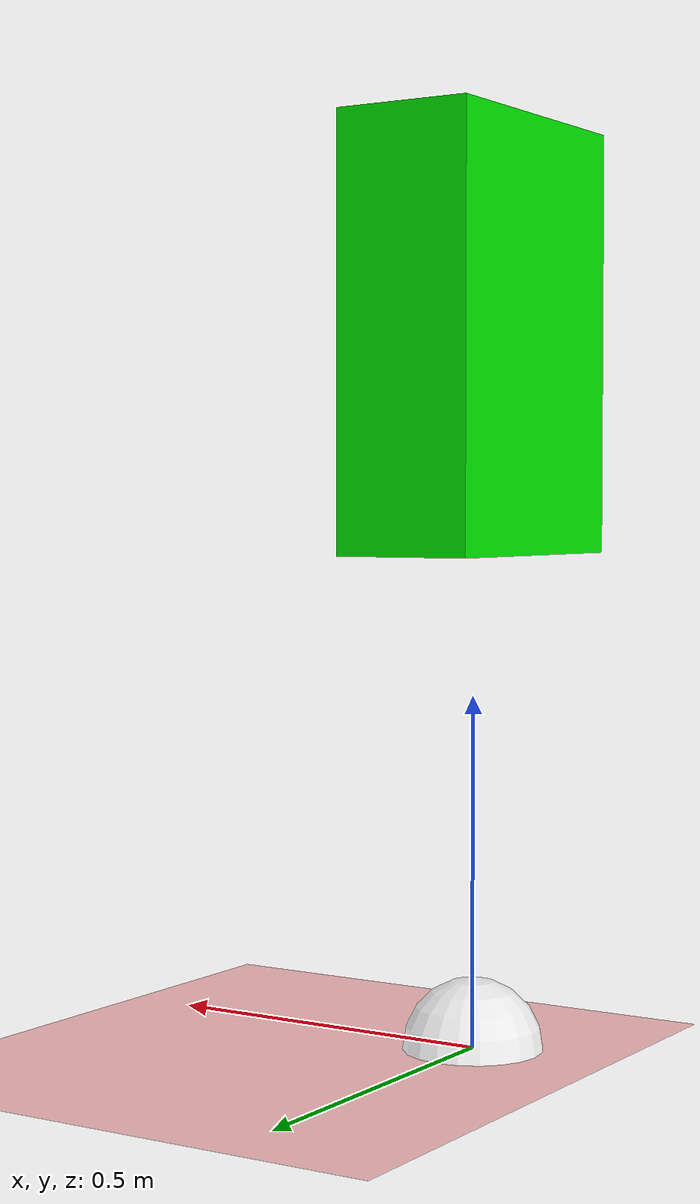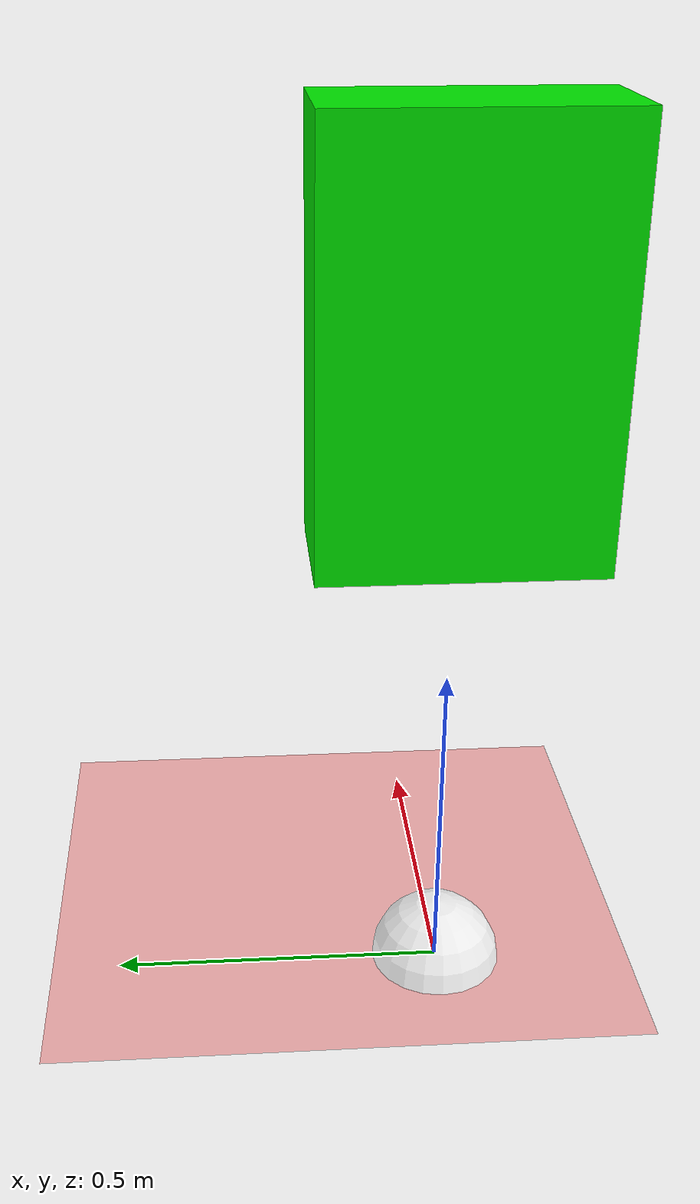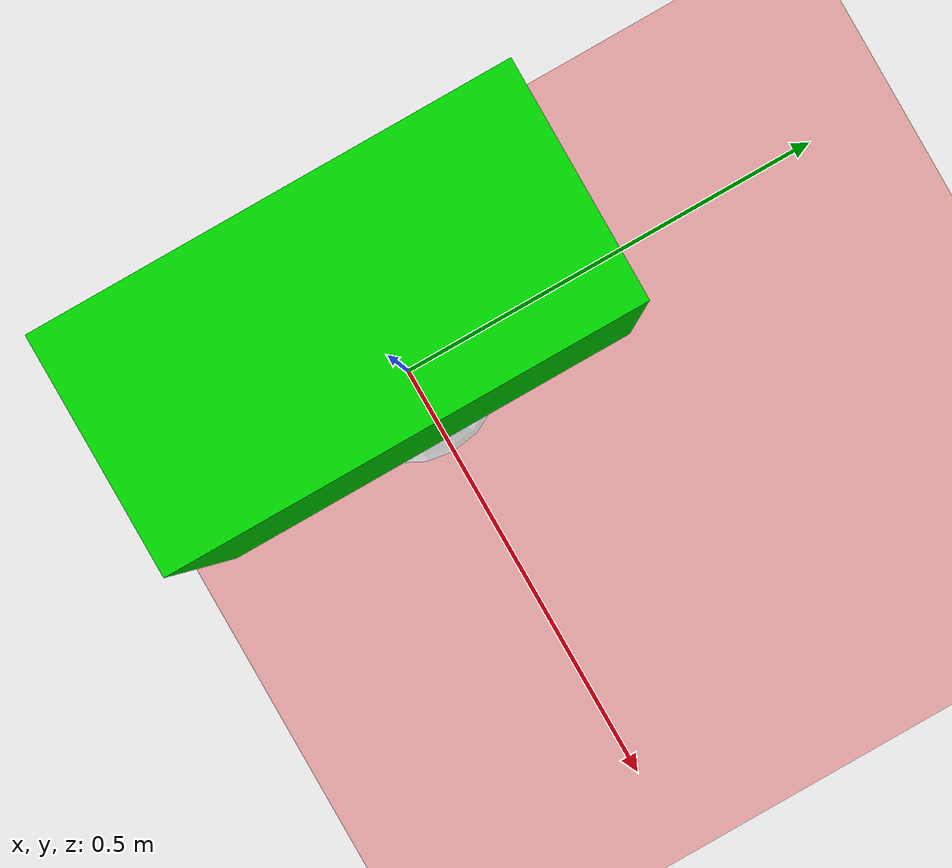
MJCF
<mujoco>
   <worldbody>
      <light diffuse=".5 .5 .5" pos="0 0 3" dir="0 0 -1"/>
      <geom type="plane" size="1 1 0.1" rgba=".9 0 0 1"/>
      <body pos="0 0 1">
	<joint name="tx" type="slide" pos="0 0 0" axis="       1        0        0"></joint>
	<joint name="ty" type="slide" pos="0 0 0" axis="       0        1        0"></joint>
	<joint name="tz" type="slide" pos="0 0 0" axis="       0        0        1"></joint>
         <geom type="box" size=".1 .2 .3" rgba="0 .9 0 1"/>
      </body>
	<body name="sphere" mocap="true" pos="0.0 0.0 0.0">
	    	<geom conaffinity="0" contype="0" pos="0 0 0" rgba="1.0 1.0 1.0 0.5" size="0.1 0.1 0.1" type="sphere"></geom>
	</body>
   </worldbody>
</mujoco>
